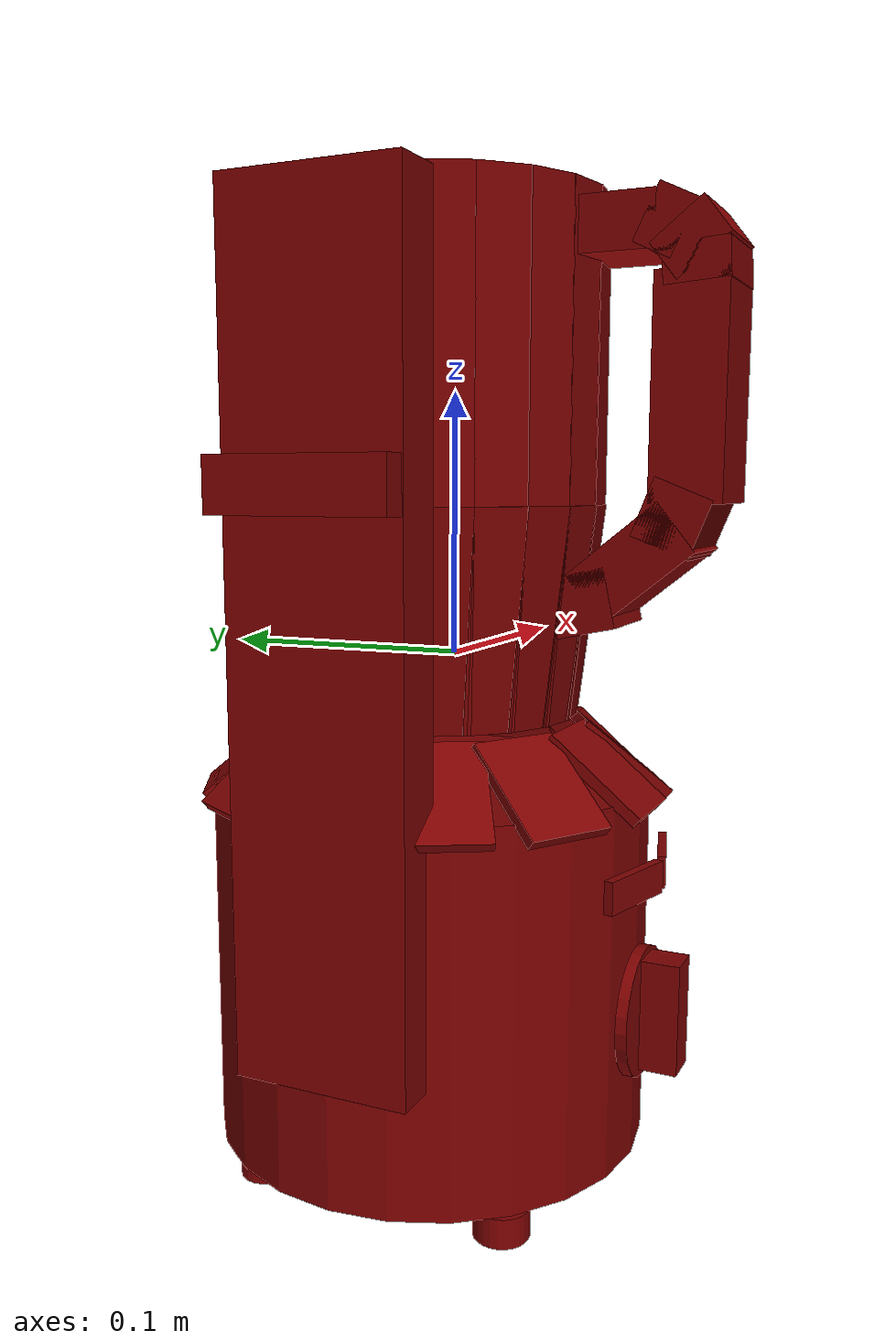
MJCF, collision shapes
<?xml version='1.0' encoding='UTF-8'?>
<mujoco model="model">
  <option timestep="0.002" gravity="0.0 0.0 -9.81"/>
  <compiler angle="radian"/>
  <asset>
    <mesh file="visuals/blade.obj" name="blade_vis"/>
    <mesh file="visuals/Body001.obj" name="Body001_vis"/>
    <mesh file="visuals/power_button.obj" name="power_button_vis"/>
    <mesh file="visuals/pulse_button.obj" name="pulse_button_vis"/>
    <mesh file="visuals/pitcher.obj" name="pitcher_vis"/>
    <mesh file="visuals/pitcher_main.obj" name="pitcher_main_vis"/>
    <mesh file="visuals/knob_speed.obj" name="knob_speed_vis"/>
    <texture file="visuals/T_BC001.png" name="Body001_material" type="2d"/>
    <material name="Body001_material" rgba="1 1 1 1.0" texture="Body001_material" shininess="0.5" specular="1"/>
    <texture file="visuals/T_BC001.png" name="power_button_material" type="2d"/>
    <material name="power_button_material" rgba="1 1 1 1.0" texture="power_button_material" shininess="0.5" specular="1"/>
    <texture file="visuals/T_BC001.png" name="pulse_button_material" type="2d"/>
    <material name="pulse_button_material" rgba="1 1 1 1.0" texture="pulse_button_material" shininess="0.5" specular="1"/>
    <texture file="visuals/T_BC001.png" name="pitcher_material" type="2d"/>
    <material name="pitcher_material" rgba="1 1 1 1.0" texture="pitcher_material" shininess="0.5" specular="1"/>
    <texture file="visuals/T_BC001.png" name="blade_material" type="2d"/>
    <material name="blade_material" rgba="1 1 1 1.0" texture="blade_material" shininess="0.5" specular="1"/>
    <material name="pitcher_main_material" rgba="0.20520606637001038 0.20520606637001038 0.20520606637001038 0.699999988079071" shininess="0.5" specular="0.33333333333333337"/>
    <texture file="visuals/T_BC001.png" name="knob_speed_material" type="2d"/>
    <material name="knob_speed_material" rgba="1 1 1 1.0" texture="knob_speed_material" shininess="0.5" specular="1"/>
  </asset>
  <default>
    <default class="visual">
      <geom conaffinity="0" contype="0" group="1" type="mesh"/>
    </default>
    <default class="collision">
      <geom group="0" rgba="0.5 0 0 0.5" density="1.0" solref="0.004 1" solimp="0.998 0.998 0.001"/>
    </default>
    <default class="spawn">
      <geom group="0" rgba="1 1 1 0.5" contype="0" conaffinity="0"/>
      <site group="0" rgba="1 1 1 0.5"/>
    </default>
    <default class="region">
      <geom group="1" conaffinity="0" contype="0" rgba="0 1 0 0" mass="0"/>
    </default>
  </default>
  <worldbody>
    <body>
      <body name="object">
        <geom mesh="Body001_vis" type="mesh" solimp="0.998 0.998 0.001" solref="0.001 1" friction="0.95 0.3 0.1" class="visual" material="Body001_material"/>
        <geom type="cylinder" pos="0.009167336858808994 0.014553274028003216 -0.12578082084655762" size="0.08897651731967926 0.0742231234908104" quat="1.0 0.0 0.0 0.0" class="collision"/>
        <geom type="cylinder" pos="-0.0438687689602375 -0.04000339284539223 -0.20879435539245605" size="0.010947813279926777 0.005990022327750921" quat="1.0 0.0 0.0 0.0" class="collision"/>
        <geom type="cylinder" pos="-0.0438687689602375 0.06400258839130402 -0.20879435539245605" size="0.010947813279926777 0.005990022327750921" quat="1.0 0.0 0.0 0.0" class="collision"/>
        <geom type="cylinder" pos="0.06053082272410393 0.06400258839130402 -0.20879435539245605" size="0.010947813279926777 0.005990022327750921" quat="1.0 0.0 0.0 0.0" class="collision"/>
        <geom type="cylinder" pos="0.06053082272410393 -0.03901239112019539 -0.20879435539245605" size="0.010947813279926777 0.005990022327750921" quat="1.0 0.0 0.0 0.0" class="collision"/>
        <geom type="box" pos="-0.07675522565841675 0.012925026938319206 0.00845596194267273" size="0.01111669186502695 0.03465075045824051 0.1581081598997116" quat="1.0 0.0 0.0 0.0" class="collision"/>
        <geom type="box" pos="-0.09404212236404419 0.012925045564770699 0.06534761190414429" size="0.005173716228455305 0.03465075045824051 0.010062074288725853" quat="1.0 0.0 0.0 0.0" class="collision"/>
        <geom type="box" pos="0.003289484418928623 -0.06258165836334229 -0.04266763851046562" size="0.01791430450975895 0.002153511391952634 0.022576989606022835" quat="0.9047101140022278 -0.42602771520614624 0.0 0.0" class="collision"/>
        <geom type="box" pos="0.08304135501384735 0.007437243591994047 -0.04266763851046562" size="0.01791430450975895 0.002153511391952634 0.022576989606022835" quat="0.6397266983985901 -0.30124709010124207 -0.30124709010124207 0.6397266387939453" class="collision"/>
        <geom type="box" pos="0.0130224684253335 0.08718912303447723 -0.04266763851046562" size="0.01791430450975895 0.002153511391952634 0.022576989606022835" quat="6.830371290789117e-08 -3.2164201968498674e-08 -0.42602771520614624 0.9047101140022278" class="collision"/>
        <geom type="box" pos="-0.06672942638397217 0.017170220613479614 -0.04266763851046562" size="0.01791430450975895 0.002153511391952634 0.022576989606022835" quat="0.6397266983985901 -0.30124709010124207 0.30124709010124207 -0.6397266387939453" class="collision"/>
        <geom type="box" pos="-0.05915476381778717 -0.02087409794330597 -0.04266763851046562" size="0.01791430450975895 0.0021535116247832775 0.022576989606022835" quat="0.7833322882652283 -0.36887127161026 0.21315228939056396 -0.45264843106269836" class="collision"/>
        <geom type="box" pos="-0.025021851062774658 0.07961447536945343 -0.04266763851046562" size="0.01791430450975895 0.002153511391952634 0.022576991468667984" quat="0.23382920026779175 -0.11011011153459549 0.4115525782108307 -0.8739703297615051" class="collision"/>
        <geom type="box" pos="0.07546672224998474 0.04548153281211853 -0.04266763851046562" size="0.0179143063724041 0.002153511391952634 0.022576991468667984" quat="0.4526483714580536 -0.2131519764661789 -0.3688710331916809 0.7833325266838074" class="collision"/>
        <geom type="box" pos="0.04133378341794014 -0.05500700697302818 -0.04266763851046562" size="0.01791430450975895 0.002153511391952634 0.022576989606022835" quat="0.8739704489707947 -0.41155242919921875 -0.1101100891828537 0.2338290959596634" class="collision"/>
        <geom type="box" pos="0.07005342841148376 -0.030125122517347336 -0.04266763851046562" size="0.01791430450975895 0.002153511391952634 0.022576989606022835" quat="0.7862945199012756 -0.37026602029800415 -0.2107197642326355 0.4474831223487854" class="collision"/>
        <geom type="box" pos="0.050584837794303894 0.07420118153095245 -0.04266763851046562" size="0.01791430450975895 0.002153511391952634 0.022576989606022835" quat="0.239576056599617 -0.11281633377075195 -0.41081881523132324 0.8724125623703003" class="collision"/>
        <geom type="box" pos="-0.05374151095747948 0.054732564836740494 -0.04266763851046562" size="0.0179143063724041 0.0021535116247832775 0.022576989606022835" quat="0.44748300313949585 -0.2107197493314743 0.3702661097049713 -0.7862945795059204" class="collision"/>
        <geom type="box" pos="-0.034272849559783936 -0.04959375038743019 -0.04266763851046562" size="0.01791430450975895 0.002153511391952634 0.022576989606022835" quat="0.8724126815795898 -0.41081884503364563 0.11281614750623703 -0.23957571387290955" class="collision"/>
        <body name="power_button">
          <joint axis="0.0 1.0 0.0" pos="-0.011064638383686543 -0.0752200186252594 -0.082645945250988" limited="true" name="power_button_joint" range="0.0 0.003" type="slide" damping="1" frictionloss="1" armature=".01" stiffness="0.2"  springref="-0.1"/>
          <geom mesh="power_button_vis" type="mesh" solimp="0.998 0.998 0.001" solref="0.001 1" friction="0.95 0.3 0.1" class="visual" material="power_button_material"/>
          <geom class="collision" type="box" pos="-0.011580152437090874 -0.07876469194889069 -0.0820646584033966" size="0.01785707287490368 0.0018286375561729074 0.006336010526865721" quat="0.9918130040168762 0.0 0.0 -0.12769854068756104" name="power_button_main"/>
        </body>
        <body name="pulse_button">
          <joint axis="0.0 1.0 0.0" pos="0.027376335114240646 -0.0752200186252594 -0.08264592289924622" limited="true" name="pulse_button_joint" range="0.0 0.003" type="slide" damping="1" frictionloss="1" armature=".01" stiffness="0.2"  springref="-0.1"/>
          <geom mesh="pulse_button_vis" type="mesh" solimp="0.998 0.998 0.001" solref="0.001 1" friction="0.95 0.3 0.1" class="visual" material="pulse_button_material"/>
          <geom class="collision" type="box" pos="0.027224652469158173 -0.07862499356269836 -0.0820646584033966" size="0.01785707287490368 0.0016842279583215714 0.006336010526865721" quat="1.9311312371428357e-07 0.9918130040168762 0.12769858539104462 2.4863851422196603e-08" name="pulse_button_main"/>
        </body>
        <body name="pitcher">
          <geom mesh="pitcher_vis" type="mesh" solimp="0.998 0.998 0.001" solref="0.001 1" friction="0.95 0.3 0.1" class="visual" material="pitcher_material"/>
          <geom class="collision" type="box" pos="0.008145440369844437 -0.09233808517456055 0.0985330119729042" size="0.017747683450579643 0.013349523767828941 0.039796262979507446" quat="1.0 0.0 0.0 0.0" name="pitcher_handle_3"/>
          <geom class="collision" type="box" pos="0.008145440369844437 -0.0727827250957489 0.03710109740495682" size="0.017747683450579643 0.011384028941392899 0.02155306562781334" quat="0.9015772342681885 0.432618111371994 9.606053085789741e-17 -1.3425420219842853e-23" name="pitcher_handle_1"/>
          <geom class="collision" type="box" pos="0.008145440369844437 -0.063360795378685 0.15545439720153809" size="0.017747683450579643 0.01566767320036888 0.009914807975292206" quat="1.0 0.0 0.0 0.0" name="pitcher_handle_7"/>
          <geom type="cylinder" pos="0.009167336858808994 0.010747300460934639 -0.01664736121892929" size="0.03830718621611595 0.008834727108478546" quat="1.0 0.0 0.0 0.0" class="collision"/>
          <geom class="collision" type="box" pos="0.008145440369844437 -0.08243346214294434 0.15452764928340912" size="0.017747683450579643 0.010718049481511116 0.00749454740434885" quat="0.8469546437263489 -0.5316651463508606 -1.530577021334394e-16 3.500420233682295e-17" name="pitcher_handle_6"/>
          <geom class="collision" type="box" pos="0.008145440369844437 -0.09135900437831879 0.14814645051956177" size="0.017747683450579643 0.01185432355850935 0.00811900943517685" quat="0.9448847770690918 -0.3274030089378357 -2.090412859910283e-16 -6.73083680402646e-17" name="pitcher_handle_5"/>
          <geom class="collision" type="box" pos="0.008145440369844437 -0.09370072185993195 0.14054805040359497" size="0.017747683450579643 0.01185432355850935 0.006813131272792816" quat="0.9994563460350037 -0.032970741391181946 -2.19597169398389e-16 -2.3994886228211198e-18" name="pitcher_handle_4"/>
          <geom class="collision" type="box" pos="0.008145440369844437 -0.0877424031496048 0.053584858775138855" size="0.017747683450579643 0.011384028941392899 0.01130683347582817" quat="0.981878936290741 0.18950937688350677 9.291213586273277e-17 2.4391799332567724e-17" name="pitcher_handle_2"/>
          <geom class="collision" type="box" pos="0.008145440369844437 -0.05458572134375572 0.02222570776939392" size="0.017747683450579643 0.011384028941392899 0.01130683347582817" quat="0.778609037399292 0.627509355545044 9.35099161303677e-17 -2.1988986891250213e-17" name="pitcher_handle_0"/>
          <body name="blade">
            <geom mesh="blade_vis" type="mesh" solimp="0.998 0.998 0.001" solref="0.001 1" friction="0.95 0.3 0.1" class="visual" material="blade_material"/>
            <geom type="cylinder" pos="0.009167336858808994 0.010747300460934639 0.005740303546190262" size="0.032478395849466324 0.01222135964781046" quat="1.0 0.0 0.0 0.0" class="collision"/>
          </body>
          <body name="pitcher_main">
            <geom class="region" type="cylinder" size="0.04874999821186066 0.06369391083717346" pos="0.008249832317233086 0.011845787987112999 0.08199965953826904" rgba="0 0 1 0.5" name="reg_int"/>
            <geom mesh="pitcher_main_vis" type="mesh" solimp="0.998 0.998 0.001" solref="0.001 1" friction="0.95 0.3 0.1" class="visual" material="pitcher_main_material"/>
            <geom type="box" pos="0.0706438422203064 0.01299198903143406 0.11365347355604172" size="0.00505654513835907 0.010174985975027084 0.058163709938526154" quat="1.0 0.0 0.0 0.0" class="collision"/>
            <geom type="box" pos="0.06611348688602448 0.012991990894079208 0.0168859101831913" size="0.0050565446726977825 0.010174985975027084 0.041744377464056015" quat="0.9982317090034485 -6.2111596180430655e-15 0.05944285914301872 7.986672656556948e-09" class="collision"/>
            <geom type="box" pos="0.06798288226127625 0.030981726944446564 0.11365347355604172" size="0.00505654513835907 0.01017498504370451 0.058163709938526154" quat="0.9890410900115967 0.0 0.0 0.14764051139354706" class="collision"/>
            <geom type="box" pos="0.06365001201629639 0.029658660292625427 0.0168859101831913" size="0.005056544207036495 0.01017498504370451 0.041744377464056015" quat="0.9872921705245972 -0.008776139467954636 0.0587911531329155 0.14737960696220398" class="collision"/>
            <geom type="box" pos="0.060215145349502563 0.04736381396651268 0.11365347355604172" size="0.0050565446726977825 0.01017498504370451 0.058163709938526154" quat="0.9565365314483643 0.0 0.0 0.2916126251220703" class="collision"/>
            <geom type="box" pos="0.05645528435707092 0.044836435467004776 0.01688591204583645" size="0.0050565446726977825 0.010174985975027084 0.041744377464056015" quat="0.954845130443573 -0.017334159463644028 0.05685893073678017 0.29109683632850647" class="collision"/>
            <geom type="box" pos="0.04783382639288902 0.06092069670557976 0.11365347355604172" size="0.00505654513835907 0.010174985975027084 0.058163709938526154" quat="0.9023839831352234 0.0 0.0 0.430932879447937" class="collision"/>
            <geom type="box" pos="0.0449860580265522 0.05739729106426239 0.016885913908481598" size="0.0050565446726977825 0.010174985975027084 0.041744377464056015" quat="0.9007882475852966 -0.025615708902478218 0.05363990366458893 0.4301709830760956" class="collision"/>
            <geom type="box" pos="0.031883951276540756 0.07027436792850494 0.11365347355604172" size="0.0050565446726977825 0.01017498504370451 0.058163709938526154" quat="0.8274691104888916 0.0 0.0 0.561511218547821" class="collision"/>
            <geom type="box" pos="0.030210386961698532 0.06606444716453552 0.016885913908481598" size="0.005056543741375208 0.01017498504370451 0.041744377464056015" quat="0.8260060548782349 -0.03337758034467697 0.04918677359819412 0.5605181455612183" class="collision"/>
            <geom type="box" pos="0.013209659606218338 0.07452081143856049 0.11365347355604172" size="0.00505654513835907 0.010174986906349659 0.058163709938526154" quat="0.7301030158996582 0.0 0.0 0.6833370923995972" class="collision"/>
            <geom type="box" pos="0.012910204008221626 0.07000035047531128 0.016885913908481598" size="0.005056544207036495 0.010174986906349659 0.041744377464056015" quat="0.7288120985031128 -0.04061921685934067 0.043399106711149216 0.6821286678314209" class="collision"/>
            <geom type="box" pos="-0.0062417201697826385 0.07273058593273163 0.11365347355604172" size="0.005056543741375208 0.01017498504370451 0.058163709938526154" quat="0.6124966144561768 0.0 0.0 0.790473222732544" class="collision"/>
            <geom type="box" pos="-0.005110526457428932 0.06834371387958527 0.016885913908481598" size="0.0050565446726977825 0.010174985975027084 0.041744377464056015" quat="0.6114134192466736 -0.04698765277862549 0.036408279091119766 0.7890755534172058" class="collision"/>
            <geom type="box" pos="-0.023400038480758667 0.06541426479816437 0.11365347355604172" size="0.00505654513835907 0.010174985975027084 0.058163709938526154" quat="0.48572608828544617 0.0 0.0 0.8741110563278198" class="collision"/>
            <geom type="box" pos="-0.021007366478443146 0.0615672804415226 0.01688591204583645" size="0.0050565446726977825 0.010174986906349659 0.041744377464056015" quat="0.4848670959472656 -0.051959358155727386 0.02887275256216526 0.8725654482841492" class="collision"/>
            <geom type="box" pos="-0.037419747561216354 0.053482893854379654 0.11365347355604172" size="0.00505654513835907 0.010174985975027084 0.058163709938526154" quat="0.3496263027191162 0.0 0.0 0.9368892312049866" class="collision"/>
            <geom type="box" pos="-0.03399694710969925 0.05051495507359505 0.016885913908481598" size="0.005056544207036495 0.010174985975027084 0.041744377464056015" quat="0.34900808334350586 -0.055690962821245193 0.020782630890607834 0.9352325797080994" class="collision"/>
            <geom type="box" pos="-0.04721221700310707 0.03810887411236763 0.11365347355604172" size="0.00505654513835907 0.010174986906349659 0.058163709938526154" quat="0.20713196694850922 0.0 0.0 0.9783130288124084" class="collision"/>
            <geom type="box" pos="-0.04307058826088905 0.0362728089094162 0.01688591204583645" size="0.0050565446726977825 0.010174986906349659 0.041744377464056015" quat="0.20676571130752563 -0.058153312653303146 0.012312428094446659 0.9765831232070923" class="collision"/>
            <geom type="box" pos="-0.052132368087768555 0.020062051713466644 0.11365347355604172" size="0.00505654513835907 0.010174985975027084 0.058163709938526154" quat="0.05616064369678497 0.0 0.0 0.9984217286109924" class="collision"/>
            <geom type="box" pos="-0.04763057827949524 0.019554000347852707 0.01688591204583645" size="0.0050565446726977825 0.010174985975027084 0.041744377464056015" quat="0.056061338633298874 -0.05934862047433853 0.00333832623437047 0.9966562986373901" class="collision"/>
            <geom type="box" pos="-0.05142613872885704 0.0014652842655777931 0.11365347355604172" size="0.00505654513835907 0.010174985975027084 0.058163709938526154" quat="0.09533408284187317 0.0 0.0 -0.9954453110694885" class="collision"/>
            <geom type="box" pos="-0.046978119760751724 0.002325148321688175 0.01688591204583645" size="0.005056544207036495 0.010174985975027084 0.041744377464056015" quat="0.09516550600528717 0.059171710163354874 0.0056668901816010475 -0.9936851263046265" class="collision"/>
            <geom type="box" pos="-0.045064400881528854 -0.016317259520292282 0.11365347355604172" size="0.00505654513835907 0.010174985975027084 0.058163709938526154" quat="0.2468382567167282 0.0 0.0 -0.9690566658973694" class="collision"/>
            <geom type="box" pos="-0.041086096316576004 -0.014149930328130722 0.01688591204583645" size="0.0050565446726977825 0.010174985975027084 0.041744377464056015" quat="0.24640178680419922 0.05760302394628525 0.014672649092972279 -0.9673431515693665" class="collision"/>
            <geom type="box" pos="-0.033940453082323074 -0.031018968671560287 0.11365347355604172" size="0.00505654513835907 0.010174985975027084 0.058163709938526154" quat="0.38909995555877686 0.0 0.0 -0.9211955666542053" class="collision"/>
            <geom type="box" pos="-0.03078186884522438 -0.027771256864070892 0.01688591204583645" size="0.0050565446726977825 0.010174985975027084 0.041744377464056015" quat="0.38841190934181213 0.05475810542702675 0.023129049688577652 -0.9195666313171387" class="collision"/>
            <geom type="box" pos="-0.01852252334356308 -0.0419926680624485 0.11365347355604172" size="0.00505654513835907 0.010174985975027084 0.058163709938526154" quat="0.5260125398635864 0.0 0.0 -0.8504768013954163" class="collision"/>
            <geom type="box" pos="-0.016499163582921028 -0.03793924301862717 0.01688591204583645" size="0.0050565446726977825 0.010174985975027084 0.041744377464056015" quat="0.5250824093818665 0.05055440962314606 0.03126746788620949 -0.8489729762077332" class="collision"/>
            <geom type="box" pos="-0.0011654067784547806 -0.04765874519944191 0.11365347355604172" size="0.00505654513835907 0.010174985975027084 0.058163709938526154" quat="0.6462706327438354 0.0 0.0 -0.7631083130836487" class="collision"/>
            <geom type="box" pos="-0.00041939783841371536 -0.04319022223353386 0.0168859101831913" size="0.005056544207036495 0.010174985975027084 0.041744377464056015" quat="0.6451278328895569 0.04536105692386627 0.03841593489050865 -0.7617589235305786" class="collision"/>
            <geom type="box" pos="0.016947153955698013 -0.04800551012158394 0.11365347355604172" size="0.005056543741375208 0.010174984112381935 0.058163709938526154" quat="0.751477062702179 0.0 0.0 -0.6597592234611511" class="collision"/>
            <geom type="box" pos="0.01636076159775257 -0.04351324960589409 0.01688591204583645" size="0.0050565446726977825 0.010174984112381935 0.041744377464056015" quat="0.7501482367515564 0.0392177514731884 0.04466966167092323 -0.6585925817489624" class="collision"/>
            <geom type="box" pos="0.03481881693005562 -0.042866017669439316 0.11365347355604172" size="0.00505654513835907 0.010174985975027084 0.058163709938526154" quat="0.8424695730209351 0.0 0.0 -0.5387439131736755" class="collision"/>
            <geom type="box" pos="0.0329182930290699 -0.03875356912612915 0.01688591204583645" size="0.0050565446726977825 0.010174987837672234 0.041744377464056015" quat="0.8409799337387085 0.03202425315976143 0.050078462809324265 -0.5377911925315857" class="collision"/>
            <geom type="box" pos="0.05017935112118721 -0.03277253732085228 0.11365347355604172" size="0.00505654513835907 0.010174985975027084 0.058163709938526154" quat="0.9134286046028137 0.0 0.0 -0.40699896216392517" class="collision"/>
            <geom type="box" pos="0.04714988172054291 -0.02940407767891884 0.0168859101831913" size="0.0050565446726977825 0.010174985975027084 0.041744377464056015" quat="0.9118134379386902 0.024193018674850464 0.05429643392562866 -0.4062793254852295" class="collision"/>
            <geom type="box" pos="0.061763882637023926 -0.018784044310450554 0.11365347355604172" size="0.00505654513835907 0.010174985975027084 0.058163709938526154" quat="0.9634576439857483 0.0 0.0 -0.2678607404232025" class="collision"/>
            <geom type="box" pos="0.0578836090862751 -0.01644572988152504 0.016885904595255852" size="0.005056545604020357 0.010174985975027084 0.041744377464056015" quat="0.9617539644241333 0.015922321006655693 0.057270318269729614 -0.2673872411251068" class="collision"/>
            <geom type="box" pos="0.0687098354101181 -0.0022389525547623634 0.11365347355604172" size="0.00505654513835907 0.010174985975027084 0.058163709938526154" quat="0.9922011494636536 0.0 0.0 -0.12464700639247894" class="collision"/>
            <geom type="box" pos="0.06432025134563446 -0.0011183731257915497 0.016885904595255852" size="0.0050565446726977825 0.010174985975027084 0.041744377464056015" quat="0.9904466867446899 0.007409313693642616 0.05897891893982887 -0.12442638725042343" class="collision"/>
          </body>
        </body>
        <body name="knob_speed">
          <joint axis="0.0 1.0 0.0" pos="0.008155635558068752 -0.07572159171104431 -0.13865751028060913" limited="true" name="knob_speed_joint" range="0.0 3.141592653589793" type="hinge" damping="0.05" frictionloss="0.1" armature="0.001"/>
          <geom mesh="knob_speed_vis" type="mesh" solimp="0.998 0.998 0.001" solref="0.001 1" friction="0.95 0.3 0.1" class="visual" material="knob_speed_material"/>
          <geom type="cylinder" pos="0.00803160946816206 -0.07676864415407181 -0.13837659358978271" size="0.025706293061375618 0.0022177845239639282" quat="0.7071067094802856 -0.70710688829422 -1.5700925641616852e-16 -1.2790027470567158e-23" class="collision" density="0.001"/>
          <geom class="collision" type="box" pos="0.007683024276047945 -0.08627473562955856 -0.13752222061157227" size="0.0074115293100476265 0.007729148026555777 0.022197427228093147" quat="1.0 0.0 0.0 0.0" name="knob_speed_main" density="0.001"/>
        </body>
        <geom class="region" name="reg_main" type="box" pos="0.0 0.012913554906845093 0.0" size="0.10114185309410095 0.09356140887737274 0.21655337309837341"/>
      </body>
      <site rgba="0 1 0 0" size="0.005" pos="0.00121278 0.01248687 0.17890782" name="anchor_site"/>
    </body>
  </worldbody>
  <actuator>
    <motor name="power_button_joint_actuator" joint="power_button_joint" gear="0.5"/>
    <motor name="pulse_button_joint_actuator" joint="pulse_button_joint" gear="0.5"/>
    <motor name="knob_speed_joint_actuator" joint="knob_speed_joint" gear="10"/>
  </actuator>
</mujoco>
